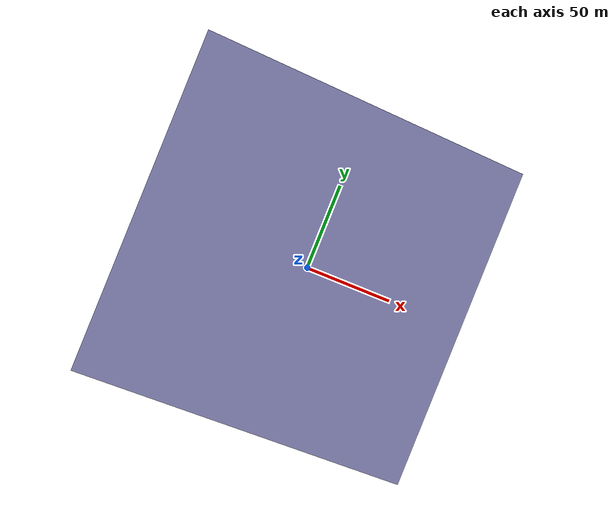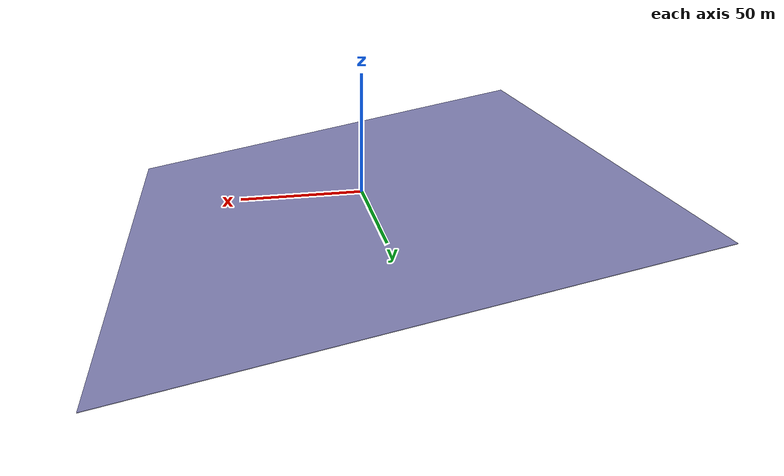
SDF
<?xml version="1.0" ?>
<sdf version="1.6">
  <world name="flat_and_slope_world">

  <!-- This is a comment in XML -->

    <!-- Physics settings -->
    <physics name="1ms" type="ignored">
      <max_step_size>0.001</max_step_size>
      <real_time_factor>1.0</real_time_factor>
    </physics>

    <!-- Plugins -->
    <plugin filename="gz-sim-contact-system" name="gz::sim::systems::Contact" />
    <plugin filename="gz-sim-imu-system" name="gz::sim::systems::Imu" />
    <plugin filename="gz-sim-physics-system" name="gz::sim::systems::Physics" />
    <plugin filename="gz-sim-scene-broadcaster-system" name="gz::sim::systems::SceneBroadcaster" />
    <plugin filename="gz-sim-sensors-system" name="gz::sim::systems::Sensors" />
    <plugin filename="gz-sim-user-commands-system" name="gz::sim::systems::UserCommands" />

    <!-- Sun light -->
    <light type="directional" name="sun">
      <cast_shadows>true</cast_shadows>
      <pose>0 0 10 0 0 0</pose>
      <diffuse>0.8 0.8 0.8 1</diffuse>
      <specular>0.2 0.2 0.2 1</specular>
      <attenuation>
        <range>1000</range>
        <constant>0.9</constant>
        <linear>0.01</linear>
        <quadratic>0.001</quadratic>
      </attenuation>
      <direction>-0.5 0.1 -0.9</direction>
    </light>

    <!---
       Slope Model
       Rotated plane at 10° (0.1745 rad) pitch along y-axis
      -->

    <model name="slope">
      <static>true</static>
      <link name="link">
        <pose>0 0 -2 0 0.1745 0</pose>

        <collision name="collision">
          <geometry>
            <box>
              <size>200 200 0.2</size>
            </box>
          </geometry>
        </collision>

        <visual name="visual">
          <geometry>
            <box>
              <size>200 200 0.2</size>
            </box>
          </geometry>
          <material>
            <ambient>0.5 0.5 0.7 1</ambient>
            <diffuse>0.5 0.5 0.7 1</diffuse>
          </material>
        </visual>
      </link>
    </model>

  </world>
</sdf>
